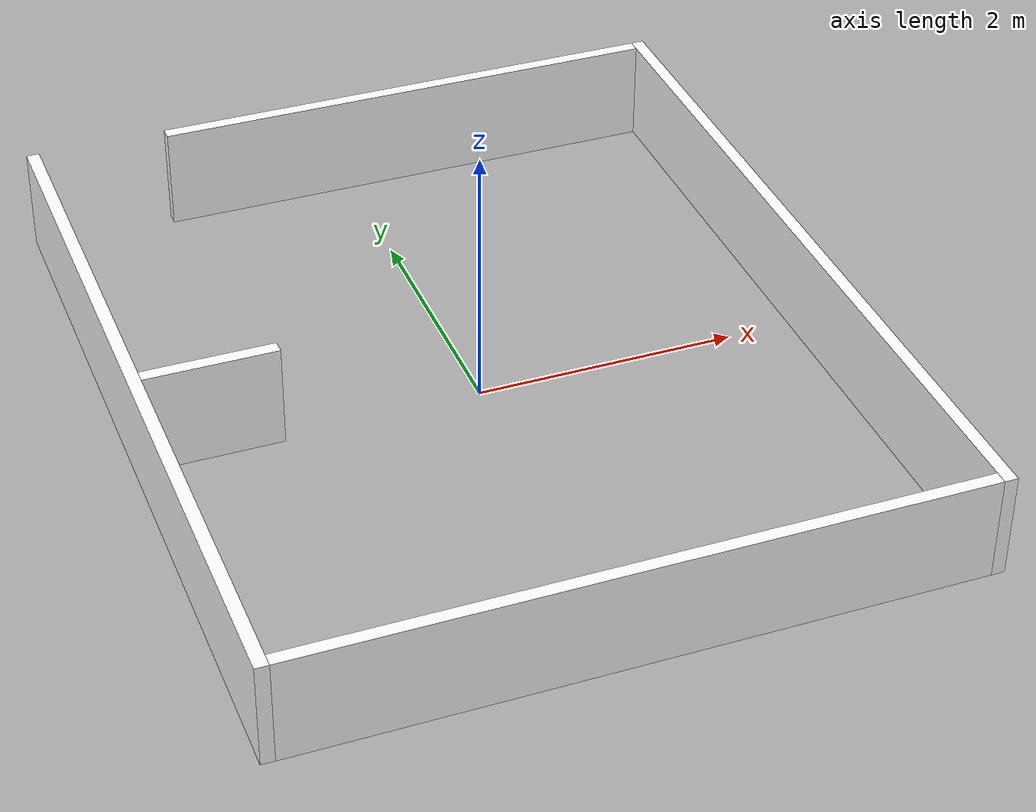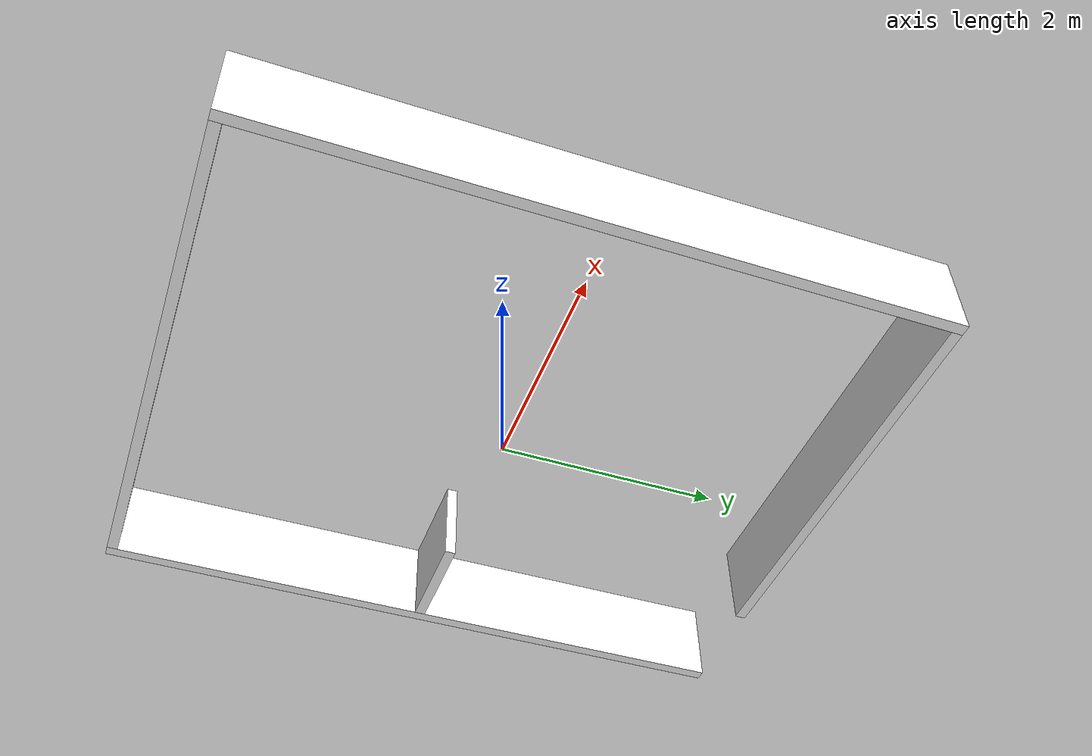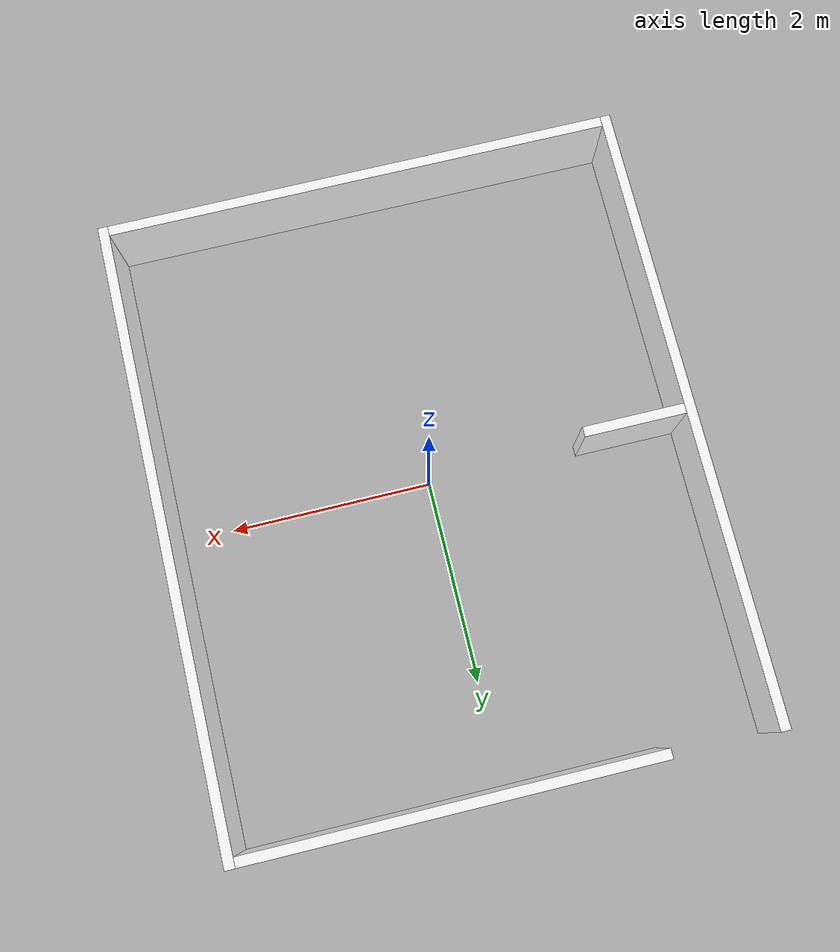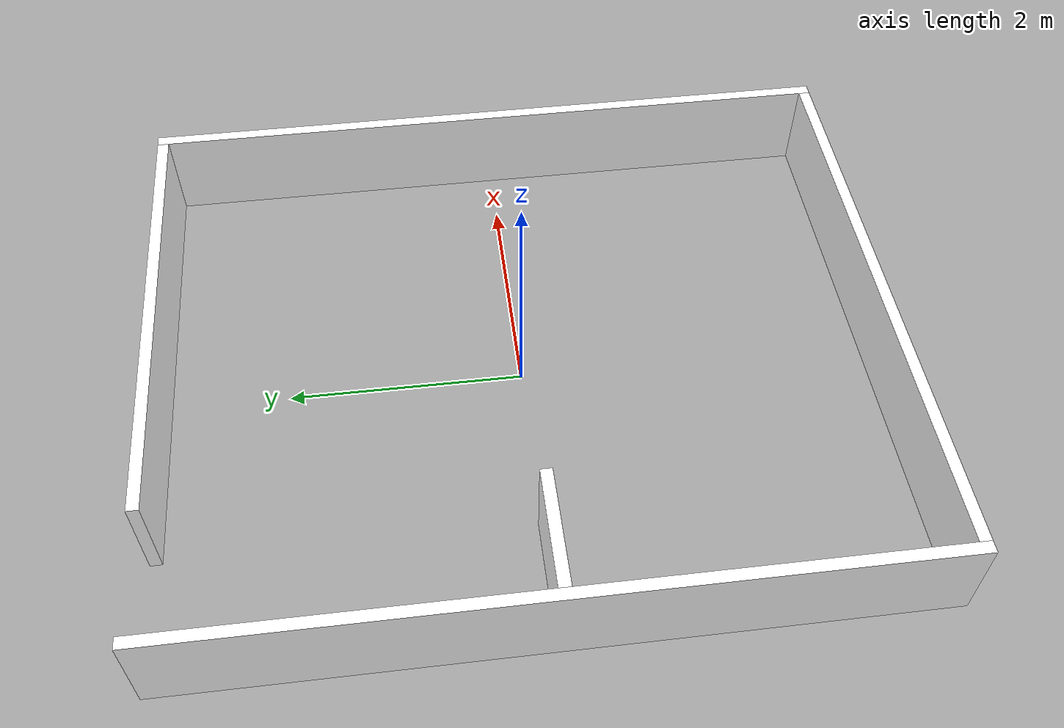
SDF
<?xml version="1.0" ?>
<sdf version="1.8">
  <model name="rcso2025_arena_frame">
    <static>true</static>
    <link name="link">
      <inertial>
        <mass>1.0</mass>
      </inertial>

      <collision name="wall_outside_bottom">
        <pose>-2.55 0.0 0.4 0.0 0.0 0.0</pose>
        <geometry>
          <box>
            <size>0.1 6.2 0.8</size>
          </box>
        </geometry>
      </collision>

      <visual name="wall_outside_bottom">
        <pose>-2.55 0.0 0.4 0.0 0.0 0.0</pose>
        <geometry>
          <box>
            <size>0.1 6.2 0.8</size>
          </box>
        </geometry>

        <material>
          <diffuse>1.0 1.0 1.0 1.0</diffuse>
          <specular>1.0 1.0 1.0 1.0</specular>
        </material>
      </visual>

      <collision name="wall_outside_upper">
        <pose>2.55 0.0 0.4 0.0 0.0 0.0</pose>
        <geometry>
          <box>
            <size>0.1 6.2 0.8</size>
          </box>
        </geometry>
      </collision>

      <visual name="wall_outside_upper">
        <pose>2.55 0.0 0.4 0.0 0.0 0.0</pose>
        <geometry>
          <box>
            <size>0.1 6.2 0.8</size>
          </box>
        </geometry>

        <material>
          <diffuse>1.0 1.0 1.0 1.0</diffuse>
          <specular>1.0 1.0 1.0 1.0</specular>
        </material>
      </visual>

      <collision name="wall_outside_right">
        <pose>0.0 -3.05 0.4 0.0 0.0 0.0</pose>
        <geometry>
          <box>
            <size>5.0 0.1 0.8</size>
          </box>
        </geometry>
      </collision>

      <visual name="wall_outside_right">
        <pose>0.0 -3.05 0.4 0.0 0.0 0.0</pose>
        <geometry>
          <box>
            <size>5.0 0.1 0.8</size>
          </box>
        </geometry>

        <material>
          <diffuse>1.0 1.0 1.0 1.0</diffuse>
          <specular>1.0 1.0 1.0 1.0</specular>
        </material>
      </visual>

      <collision name="wall_outside_left">
        <pose>0.5 3.05 0.4 0.0 0.0 0.0</pose>
        <geometry>
          <box>
            <size>4.0 0.1 0.8</size>
          </box>
        </geometry>
      </collision>

      <visual name="wall_outside_left">
        <pose>0.5 3.05 0.4 0.0 0.0 0.0</pose>
        <geometry>
          <box>
            <size>4.0 0.1 0.8</size>
          </box>
        </geometry>

        <material>
          <diffuse>1.0 1.0 1.0 1.0</diffuse>
          <specular>1.0 1.0 1.0 1.0</specular>
        </material>
      </visual>

      <collision name="wall_separate">
        <pose>-1.8 0.0 0.4 0.0 0.0 0.0</pose>
        <geometry>
          <box>
            <size>1.5 0.1 0.8</size>
          </box>
        </geometry>
      </collision>

      <visual name="wall_separate">
        <pose>-2.0 0.0 0.4 0.0 0.0 0.0</pose>
        <geometry>
          <box>
            <size>1.0 0.1 0.8</size>
          </box>
        </geometry>

        <material>
          <diffuse>1.0 1.0 1.0 1.0</diffuse>
          <specular>1.0 1.0 1.0 1.0</specular>
        </material>
      </visual>

    </link>
  </model>
</sdf>
